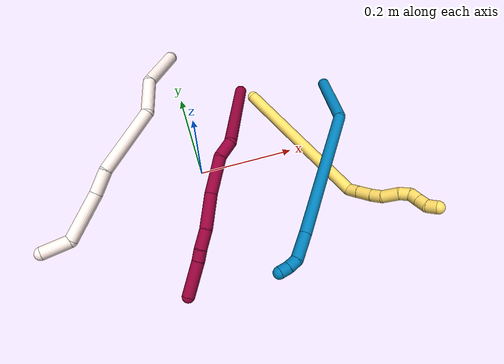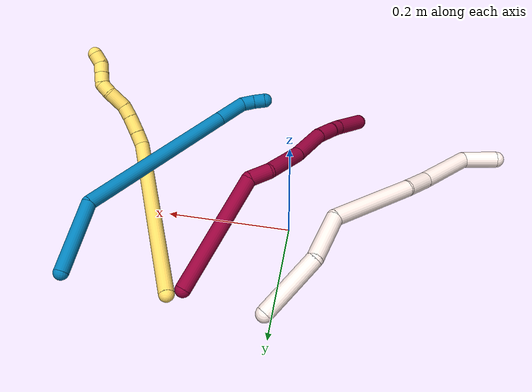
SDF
<sdf version="1.7">
 <world name="default">
  <model name="photoneo_s_sensor">
   <static>1</static>
   <pose>0 0 2 1.57079 1.57079 3.14159</pose>
   <link name="link">
    <inertial><mass>0.1</mass></inertial>
    <sensor name="sensor" type="depth">
     <update_rate>30</update_rate>
     <camera>
      <horizontal_fov>1.22</horizontal_fov>
      <image><width>1920</width><height>1200</height><format>B8G8R8</format></image>
      <clip><near>0.1</near><far>4</far></clip>
      <depth_camera><output>points</output></depth_camera>
     </camera>
     <plugin name="camera_plugin" filename="libgazebo_ros_depth_camera.so">
      <baseline>0.2</baseline>
      <alwaysOn>1</alwaysOn>
      <updateRate>0.0</updateRate>
      <cameraName>camera_ir</cameraName>
      <imageTopicName>/camera/color/image_raw</imageTopicName>
      <cameraInfoTopicName>/camera/color/camera_info</cameraInfoTopicName>
      <depthImageTopicName>/camera/depth/image_raw</depthImageTopicName>
      <depthImageCameraInfoTopicName>/camera/depth/camera_info</depthImageCameraInfoTopicName>
      <pointCloudTopicName>/camera/depth/points</pointCloudTopicName>
      <frameName>fr_optical</frameName>
      <pointCloudCutoff>0.1</pointCloudCutoff>
      <pointCloudCutoffMax>2.0</pointCloudCutoffMax>
      <distortionK1>0</distortionK1>
      <distortionK2>0</distortionK2>
      <distortionK3>0</distortionK3>
      <distortionT1>0</distortionT1>
      <distortionT2>0</distortionT2>
      <CxPrime>0</CxPrime>
      <Cx>0</Cx>
      <Cy>0</Cy>
      <focalLength>0</focalLength>
      <hackBaseline>0</hackBaseline>
     </plugin>
    </sensor>
   </link>
  </model>
  <model name="bin">
   <static>1</static>
   <link name="bottom">
    <collision name="collision-bottom">
     <pose>0 0 -0.01 0 -0 0</pose>
     <geometry><box><size>0.8 0.6 0.02</size></box></geometry>
     <surface>
      <friction><ode><mu>100</mu><mu2>100</mu2></ode></friction>
      <contact><collide_bitmask>65535</collide_bitmask></contact>
     </surface>
    </collision>
   </link>
   <link name="west_wall">
    <collision name="collision-west_wall">
     <pose>-0.41 0 0.1 0 -0 0</pose>
     <geometry><box><size>0.02 0.6 0.2</size></box></geometry>
     <surface>
      <friction><ode><mu>100</mu><mu2>100</mu2></ode></friction>
      <contact><collide_bitmask>65535</collide_bitmask></contact>
     </surface>
    </collision>
   </link>
   <link name="east_wall">
    <collision name="collision-east_wall">
     <pose>0.41 0 0.1 0 -0 0</pose>
     <geometry><box><size>0.02 0.6 0.2</size></box></geometry>
     <surface>
      <friction><ode><mu>100</mu><mu2>100</mu2></ode></friction>
      <contact><collide_bitmask>65535</collide_bitmask></contact>
     </surface>
    </collision>
   </link>
   <link name="south_wall">
    <collision name="collision-south_wall">
     <pose>0 -0.31 0.1 0 -0 0</pose>
     <geometry><box><size>0.8 0.02 0.2</size></box></geometry>
     <surface>
      <friction><ode><mu>100</mu><mu2>100</mu2></ode></friction>
      <contact><collide_bitmask>65535</collide_bitmask></contact>
     </surface>
    </collision>
   </link>
   <link name="north_wall">
    <collision name="collision-north_wall">
     <pose>0 0.31 0.1 0 -0 0</pose>
     <geometry><box><size>0.8 0.02 0.2</size></box></geometry>
     <surface>
      <friction><ode><mu>100</mu><mu2>100</mu2></ode></friction>
      <contact><collide_bitmask>65535</collide_bitmask></contact>
     </surface>
    </collision>
   </link>
  </model>
  <model name="5">
   <static>0</static>
   <link name="5">
    <collision name="collision-cylinder-e_1_1_4">
     <pose>0.011786 -0.065314 0.139741 0.437221 0.07626 0.01695</pose>
     <geometry><cylinder><radius>0.0125</radius><length>0.309401</length></cylinder></geometry>
     <surface>
      <friction><ode><mu>1.16</mu><mu2>1.16</mu2><slip1>0</slip1><slip2>0</slip2></ode></friction>
      <contact><ode><kp>1e+06</kp><kd>1</kd><max_vel>0</max_vel><min_depth>0.001</min_depth></ode></contact>
     </surface>
    </collision>
    <visual name="visual-cylinder-e_1_1_4">
     <pose>0.011786 -0.065314 0.139741 0.437221 0.07626 0.01695</pose>
     <geometry><cylinder><radius>0.0125</radius><length>0.309401</length></cylinder></geometry>
     <material><ambient>1 0.858824 0.4 1</ambient></material>
    </visual>
    <collision name="collision-cylinder-e_2_4_5">
     <pose>0.027344 -0.140389 0.285505 1.01797 0.317723 0.178331</pose>
     <geometry><cylinder><radius>0.0125</radius><length>0.024149</length></cylinder></geometry>
     <surface>
      <friction><ode><mu>1.16</mu><mu2>1.16</mu2><slip1>0</slip1><slip2>0</slip2></ode></friction>
      <contact><ode><kp>1e+06</kp><kd>1</kd><max_vel>0</max_vel><min_depth>0.001</min_depth></ode></contact>
     </surface>
    </collision>
    <visual name="visual-cylinder-e_2_4_5">
     <pose>0.027344 -0.140389 0.285505 1.01797 0.317723 0.178331</pose>
     <geometry><cylinder><radius>0.0125</radius><length>0.024149</length></cylinder></geometry>
     <material><ambient>1 0.858824 0.4 1</ambient></material>
    </visual>
    <collision name="collision-cylinder-e_3_5_6">
     <pose>0.035257 -0.162633 0.299219 1.0186 0.275269 0.154392</pose>
     <geometry><cylinder><radius>0.0125</radius><length>0.030469</length></cylinder></geometry>
     <surface>
      <friction><ode><mu>1.16</mu><mu2>1.16</mu2><slip1>0</slip1><slip2>0</slip2></ode></friction>
      <contact><ode><kp>1e+06</kp><kd>1</kd><max_vel>0</max_vel><min_depth>0.001</min_depth></ode></contact>
     </surface>
    </collision>
    <visual name="visual-cylinder-e_3_5_6">
     <pose>0.035257 -0.162633 0.299219 1.0186 0.275269 0.154392</pose>
     <geometry><cylinder><radius>0.0125</radius><length>0.030469</length></cylinder></geometry>
     <material><ambient>1 0.858824 0.4 1</ambient></material>
    </visual>
    <collision name="collision-cylinder-e_4_6_7">
     <pose>0.042054 -0.184763 0.311646 1.11442 0.242257 0.151396</pose>
     <geometry><cylinder><radius>0.0125</radius><length>0.022144</length></cylinder></geometry>
     <surface>
      <friction><ode><mu>1.16</mu><mu2>1.16</mu2><slip1>0</slip1><slip2>0</slip2></ode></friction>
      <contact><ode><kp>1e+06</kp><kd>1</kd><max_vel>0</max_vel><min_depth>0.001</min_depth></ode></contact>
     </surface>
    </collision>
    <visual name="visual-cylinder-e_4_6_7">
     <pose>0.042054 -0.184763 0.311646 1.11442 0.242257 0.151396</pose>
     <geometry><cylinder><radius>0.0125</radius><length>0.022144</length></cylinder></geometry>
     <material><ambient>1 0.858824 0.4 1</ambient></material>
    </visual>
    <collision name="collision-cylinder-e_5_7_8">
     <pose>0.04532 -0.210781 0.319142 1.40381 0.036704 0.031036</pose>
     <geometry><cylinder><radius>0.0125</radius><length>0.033223</length></cylinder></geometry>
     <surface>
      <friction><ode><mu>1.16</mu><mu2>1.16</mu2><slip1>0</slip1><slip2>0</slip2></ode></friction>
      <contact><ode><kp>1e+06</kp><kd>1</kd><max_vel>0</max_vel><min_depth>0.001</min_depth></ode></contact>
     </surface>
    </collision>
    <visual name="visual-cylinder-e_5_7_8">
     <pose>0.04532 -0.210781 0.319142 1.40381 0.036704 0.031036</pose>
     <geometry><cylinder><radius>0.0125</radius><length>0.033223</length></cylinder></geometry>
     <material><ambient>1 0.858824 0.4 1</ambient></material>
    </visual>
    <collision name="collision-cylinder-e_6_8_9">
     <pose>0.045939 -0.236496 0.326242 1.13596 0.000941 0.0006</pose>
     <geometry><cylinder><radius>0.0125</radius><length>0.020608</length></cylinder></geometry>
     <surface>
      <friction><ode><mu>1.16</mu><mu2>1.16</mu2><slip1>0</slip1><slip2>0</slip2></ode></friction>
      <contact><ode><kp>1e+06</kp><kd>1</kd><max_vel>0</max_vel><min_depth>0.001</min_depth></ode></contact>
     </surface>
    </collision>
    <visual name="visual-cylinder-e_6_8_9">
     <pose>0.045939 -0.236496 0.326242 1.13596 0.000941 0.0006</pose>
     <geometry><cylinder><radius>0.0125</radius><length>0.020608</length></cylinder></geometry>
     <material><ambient>1 0.858824 0.4 1</ambient></material>
    </visual>
    <collision name="collision-cylinder-e_7_9_10">
     <pose>0.049806 -0.251242 0.338066 0.625177 0.395862 0.129452</pose>
     <geometry><cylinder><radius>0.0125</radius><length>0.020005</length></cylinder></geometry>
     <surface>
      <friction><ode><mu>1.16</mu><mu2>1.16</mu2><slip1>0</slip1><slip2>0</slip2></ode></friction>
      <contact><ode><kp>1e+06</kp><kd>1</kd><max_vel>0</max_vel><min_depth>0.001</min_depth></ode></contact>
     </surface>
    </collision>
    <visual name="visual-cylinder-e_7_9_10">
     <pose>0.049806 -0.251242 0.338066 0.625177 0.395862 0.129452</pose>
     <geometry><cylinder><radius>0.0125</radius><length>0.020005</length></cylinder></geometry>
     <material><ambient>1 0.858824 0.4 1</ambient></material>
    </visual>
    <collision name="collision-cylinder-e_8_10_11">
     <pose>0.058022 -0.26228 0.352565 0.67683 0.450991 0.161125</pose>
     <geometry><cylinder><radius>0.0125</radius><length>0.02</length></cylinder></geometry>
     <surface>
      <friction><ode><mu>1.16</mu><mu2>1.16</mu2><slip1>0</slip1><slip2>0</slip2></ode></friction>
      <contact><ode><kp>1e+06</kp><kd>1</kd><max_vel>0</max_vel><min_depth>0.001</min_depth></ode></contact>
     </surface>
    </collision>
    <visual name="visual-cylinder-e_8_10_11">
     <pose>0.058022 -0.26228 0.352565 0.67683 0.450991 0.161125</pose>
     <geometry><cylinder><radius>0.0125</radius><length>0.02</length></cylinder></geometry>
     <material><ambient>1 0.858824 0.4 1</ambient></material>
    </visual>
    <collision name="collision-cylinder-e_9_11_2">
     <pose>0.064354 -0.27672 0.363897 1.11503 0.198695 0.124134</pose>
     <geometry><cylinder><radius>0.0125</radius><length>0.02</length></cylinder></geometry>
     <surface>
      <friction><ode><mu>1.16</mu><mu2>1.16</mu2><slip1>0</slip1><slip2>0</slip2></ode></friction>
      <contact><ode><kp>1e+06</kp><kd>1</kd><max_vel>0</max_vel><min_depth>0.001</min_depth></ode></contact>
     </surface>
    </collision>
    <visual name="visual-cylinder-e_9_11_2">
     <pose>0.064354 -0.27672 0.363897 1.11503 0.198695 0.124134</pose>
     <geometry><cylinder><radius>0.0125</radius><length>0.02</length></cylinder></geometry>
     <material><ambient>1 0.858824 0.4 1</ambient></material>
    </visual>
    <collision name="collision-sphere-2">
     <pose>0.066328 -0.285523 0.368211 0 -0 0</pose>
     <geometry><sphere><radius>0.0125</radius></sphere></geometry>
     <surface>
      <friction><ode><mu>1.16</mu><mu2>1.16</mu2><slip1>0</slip1><slip2>0</slip2></ode></friction>
      <contact><ode><kp>1e+06</kp><kd>1</kd><max_vel>0</max_vel><min_depth>0.001</min_depth></ode></contact>
     </surface>
    </collision>
    <visual name="visual-sphere-2">
     <pose>0.066328 -0.285523 0.368211 0 -0 0</pose>
     <geometry><sphere><radius>0.0125</radius></sphere></geometry>
     <material><ambient>1 0.858824 0.4 1</ambient></material>
    </visual>
    <collision name="collision-sphere-11">
     <pose>0.06238 -0.267917 0.359582 0 -0 0</pose>
     <geometry><sphere><radius>0.0125</radius></sphere></geometry>
     <surface>
      <friction><ode><mu>1.16</mu><mu2>1.16</mu2><slip1>0</slip1><slip2>0</slip2></ode></friction>
      <contact><ode><kp>1e+06</kp><kd>1</kd><max_vel>0</max_vel><min_depth>0.001</min_depth></ode></contact>
     </surface>
    </collision>
    <visual name="visual-sphere-11">
     <pose>0.06238 -0.267917 0.359582 0 -0 0</pose>
     <geometry><sphere><radius>0.0125</radius></sphere></geometry>
     <material><ambient>1 0.858824 0.4 1</ambient></material>
    </visual>
    <collision name="collision-sphere-10">
     <pose>0.053663 -0.256643 0.345549 0 -0 0</pose>
     <geometry><sphere><radius>0.0125</radius></sphere></geometry>
     <surface>
      <friction><ode><mu>1.16</mu><mu2>1.16</mu2><slip1>0</slip1><slip2>0</slip2></ode></friction>
      <contact><ode><kp>1e+06</kp><kd>1</kd><max_vel>0</max_vel><min_depth>0.001</min_depth></ode></contact>
     </surface>
    </collision>
    <visual name="visual-sphere-10">
     <pose>0.053663 -0.256643 0.345549 0 -0 0</pose>
     <geometry><sphere><radius>0.0125</radius></sphere></geometry>
     <material><ambient>1 0.858824 0.4 1</ambient></material>
    </visual>
    <collision name="collision-sphere-9">
     <pose>0.045949 -0.245841 0.330582 0 -0 0</pose>
     <geometry><sphere><radius>0.0125</radius></sphere></geometry>
     <surface>
      <friction><ode><mu>1.16</mu><mu2>1.16</mu2><slip1>0</slip1><slip2>0</slip2></ode></friction>
      <contact><ode><kp>1e+06</kp><kd>1</kd><max_vel>0</max_vel><min_depth>0.001</min_depth></ode></contact>
     </surface>
    </collision>
    <visual name="visual-sphere-9">
     <pose>0.045949 -0.245841 0.330582 0 -0 0</pose>
     <geometry><sphere><radius>0.0125</radius></sphere></geometry>
     <material><ambient>1 0.858824 0.4 1</ambient></material>
    </visual>
    <collision name="collision-sphere-4">
     <pose>0.023572 -0.130627 0.279482 0 -0 0</pose>
     <geometry><sphere><radius>0.0125</radius></sphere></geometry>
     <surface>
      <friction><ode><mu>1.16</mu><mu2>1.16</mu2><slip1>0</slip1><slip2>0</slip2></ode></friction>
      <contact><ode><kp>1e+06</kp><kd>1</kd><max_vel>0</max_vel><min_depth>0.001</min_depth></ode></contact>
     </surface>
    </collision>
    <visual name="visual-sphere-4">
     <pose>0.023572 -0.130627 0.279482 0 -0 0</pose>
     <geometry><sphere><radius>0.0125</radius></sphere></geometry>
     <material><ambient>1 0.858824 0.4 1</ambient></material>
    </visual>
    <collision name="collision-sphere-1">
     <geometry><sphere><radius>0.0125</radius></sphere></geometry>
     <surface>
      <friction><ode><mu>1.16</mu><mu2>1.16</mu2><slip1>0</slip1><slip2>0</slip2></ode></friction>
      <contact><ode><kp>1e+06</kp><kd>1</kd><max_vel>0</max_vel><min_depth>0.001</min_depth></ode></contact>
     </surface>
    </collision>
    <visual name="visual-sphere-1">
     <geometry><sphere><radius>0.0125</radius></sphere></geometry>
     <material><ambient>1 0.858824 0.4 1</ambient></material>
    </visual>
    <collision name="collision-sphere-8">
     <pose>0.04593 -0.227151 0.321901 0 -0 0</pose>
     <geometry><sphere><radius>0.0125</radius></sphere></geometry>
     <surface>
      <friction><ode><mu>1.16</mu><mu2>1.16</mu2><slip1>0</slip1><slip2>0</slip2></ode></friction>
      <contact><ode><kp>1e+06</kp><kd>1</kd><max_vel>0</max_vel><min_depth>0.001</min_depth></ode></contact>
     </surface>
    </collision>
    <visual name="visual-sphere-8">
     <pose>0.04593 -0.227151 0.321901 0 -0 0</pose>
     <geometry><sphere><radius>0.0125</radius></sphere></geometry>
     <material><ambient>1 0.858824 0.4 1</ambient></material>
    </visual>
    <collision name="collision-sphere-5">
     <pose>0.031117 -0.150151 0.291528 0 -0 0</pose>
     <geometry><sphere><radius>0.0125</radius></sphere></geometry>
     <surface>
      <friction><ode><mu>1.16</mu><mu2>1.16</mu2><slip1>0</slip1><slip2>0</slip2></ode></friction>
      <contact><ode><kp>1e+06</kp><kd>1</kd><max_vel>0</max_vel><min_depth>0.001</min_depth></ode></contact>
     </surface>
    </collision>
    <visual name="visual-sphere-5">
     <pose>0.031117 -0.150151 0.291528 0 -0 0</pose>
     <geometry><sphere><radius>0.0125</radius></sphere></geometry>
     <material><ambient>1 0.858824 0.4 1</ambient></material>
    </visual>
    <collision name="collision-sphere-6">
     <pose>0.039398 -0.175115 0.306909 0 -0 0</pose>
     <geometry><sphere><radius>0.0125</radius></sphere></geometry>
     <surface>
      <friction><ode><mu>1.16</mu><mu2>1.16</mu2><slip1>0</slip1><slip2>0</slip2></ode></friction>
      <contact><ode><kp>1e+06</kp><kd>1</kd><max_vel>0</max_vel><min_depth>0.001</min_depth></ode></contact>
     </surface>
    </collision>
    <visual name="visual-sphere-6">
     <pose>0.039398 -0.175115 0.306909 0 -0 0</pose>
     <geometry><sphere><radius>0.0125</radius></sphere></geometry>
     <material><ambient>1 0.858824 0.4 1</ambient></material>
    </visual>
    <collision name="collision-sphere-7">
     <pose>0.04471 -0.194412 0.316383 0 -0 0</pose>
     <geometry><sphere><radius>0.0125</radius></sphere></geometry>
     <surface>
      <friction><ode><mu>1.16</mu><mu2>1.16</mu2><slip1>0</slip1><slip2>0</slip2></ode></friction>
      <contact><ode><kp>1e+06</kp><kd>1</kd><max_vel>0</max_vel><min_depth>0.001</min_depth></ode></contact>
     </surface>
    </collision>
    <visual name="visual-sphere-7">
     <pose>0.04471 -0.194412 0.316383 0 -0 0</pose>
     <geometry><sphere><radius>0.0125</radius></sphere></geometry>
     <material><ambient>1 0.858824 0.4 1</ambient></material>
    </visual>
    <inertial>
     <pose>0.024418 -0.120655 0.209134 0 -0 0</pose>
     <mass>0.5</mass>
     <inertia>
      <ixx>0.002539</ixx>
      <ixy>0</ixy>
      <ixz>0</ixz>
      <iyy>0.002278</iyy>
      <iyz>0</iyz>
      <izz>0.000898</izz>
     </inertia>
    </inertial>
   </link>
   <pose>0.163194 0.155355 0.011499 -2.08676 -0.799883 -2.63464</pose>
  </model>
  <model name="8">
   <static>0</static>
   <link name="8">
    <collision name="collision-cylinder-e_1_1_4">
     <pose>-0.022326 -0.082248 0.046575 1.05554 -0.231955 -0.135614</pose>
     <geometry><cylinder><radius>0.0125</radius><length>0.194242</length></cylinder></geometry>
     <surface>
      <friction><ode><mu>1.16</mu><mu2>1.16</mu2><slip1>0</slip1><slip2>0</slip2></ode></friction>
      <contact><ode><kp>1e+06</kp><kd>1</kd><max_vel>0</max_vel><min_depth>0.001</min_depth></ode></contact>
     </surface>
    </collision>
    <visual name="visual-cylinder-e_1_1_4">
     <pose>-0.022326 -0.082248 0.046575 1.05554 -0.231955 -0.135614</pose>
     <geometry><cylinder><radius>0.0125</radius><length>0.194242</length></cylinder></geometry>
     <material><ambient>0.584314 0 0.227451 1</ambient></material>
    </visual>
    <collision name="collision-cylinder-e_2_4_5">
     <pose>-0.054615 -0.179463 0.091862 1.65666 -0.585594 -0.634834</pose>
     <geometry><cylinder><radius>0.0125</radius><length>0.036051</length></cylinder></geometry>
     <surface>
      <friction><ode><mu>1.16</mu><mu2>1.16</mu2><slip1>0</slip1><slip2>0</slip2></ode></friction>
      <contact><ode><kp>1e+06</kp><kd>1</kd><max_vel>0</max_vel><min_depth>0.001</min_depth></ode></contact>
     </surface>
    </collision>
    <visual name="visual-cylinder-e_2_4_5">
     <pose>-0.054615 -0.179463 0.091862 1.65666 -0.585594 -0.634834</pose>
     <geometry><cylinder><radius>0.0125</radius><length>0.036051</length></cylinder></geometry>
     <material><ambient>0.584314 0 0.227451 1</ambient></material>
    </visual>
    <collision name="collision-cylinder-e_3_5_6">
     <pose>-0.072145 -0.229752 0.083221 1.77602 -0.206741 -0.253746</pose>
     <geometry><cylinder><radius>0.0125</radius><length>0.073729</length></cylinder></geometry>
     <surface>
      <friction><ode><mu>1.16</mu><mu2>1.16</mu2><slip1>0</slip1><slip2>0</slip2></ode></friction>
      <contact><ode><kp>1e+06</kp><kd>1</kd><max_vel>0</max_vel><min_depth>0.001</min_depth></ode></contact>
     </surface>
    </collision>
    <visual name="visual-cylinder-e_3_5_6">
     <pose>-0.072145 -0.229752 0.083221 1.77602 -0.206741 -0.253746</pose>
     <geometry><cylinder><radius>0.0125</radius><length>0.073729</length></cylinder></geometry>
     <material><ambient>0.584314 0 0.227451 1</ambient></material>
    </visual>
    <collision name="collision-cylinder-e_4_6_7">
     <pose>-0.083882 -0.298429 0.072572 1.66932 -0.123772 -0.136571</pose>
     <geometry><cylinder><radius>0.0125</radius><length>0.067552</length></cylinder></geometry>
     <surface>
      <friction><ode><mu>1.16</mu><mu2>1.16</mu2><slip1>0</slip1><slip2>0</slip2></ode></friction>
      <contact><ode><kp>1e+06</kp><kd>1</kd><max_vel>0</max_vel><min_depth>0.001</min_depth></ode></contact>
     </surface>
    </collision>
    <visual name="visual-cylinder-e_4_6_7">
     <pose>-0.083882 -0.298429 0.072572 1.66932 -0.123772 -0.136571</pose>
     <geometry><cylinder><radius>0.0125</radius><length>0.067552</length></cylinder></geometry>
     <material><ambient>0.584314 0 0.227451 1</ambient></material>
    </visual>
    <collision name="collision-cylinder-e_5_7_8">
     <pose>-0.09233 -0.349701 0.064351 1.83903 -0.226308 -0.295995</pose>
     <geometry><cylinder><radius>0.0125</radius><length>0.038134</length></cylinder></geometry>
     <surface>
      <friction><ode><mu>1.16</mu><mu2>1.16</mu2><slip1>0</slip1><slip2>0</slip2></ode></friction>
      <contact><ode><kp>1e+06</kp><kd>1</kd><max_vel>0</max_vel><min_depth>0.001</min_depth></ode></contact>
     </surface>
    </collision>
    <visual name="visual-cylinder-e_5_7_8">
     <pose>-0.09233 -0.349701 0.064351 1.83903 -0.226308 -0.295995</pose>
     <geometry><cylinder><radius>0.0125</radius><length>0.038134</length></cylinder></geometry>
     <material><ambient>0.584314 0 0.227451 1</ambient></material>
    </visual>
    <collision name="collision-cylinder-e_6_8_9">
     <pose>-0.098024 -0.37756 0.055657 1.93316 -0.132392 -0.191471</pose>
     <geometry><cylinder><radius>0.0125</radius><length>0.021454</length></cylinder></geometry>
     <surface>
      <friction><ode><mu>1.16</mu><mu2>1.16</mu2><slip1>0</slip1><slip2>0</slip2></ode></friction>
      <contact><ode><kp>1e+06</kp><kd>1</kd><max_vel>0</max_vel><min_depth>0.001</min_depth></ode></contact>
     </surface>
    </collision>
    <visual name="visual-cylinder-e_6_8_9">
     <pose>-0.098024 -0.37756 0.055657 1.93316 -0.132392 -0.191471</pose>
     <geometry><cylinder><radius>0.0125</radius><length>0.021454</length></cylinder></geometry>
     <material><ambient>0.584314 0 0.227451 1</ambient></material>
    </visual>
    <collision name="collision-cylinder-e_7_9_2">
     <pose>-0.106629 -0.418567 0.038926 1.96609 -0.210409 -0.314343</pose>
     <geometry><cylinder><radius>0.0125</radius><length>0.068838</length></cylinder></geometry>
     <surface>
      <friction><ode><mu>1.16</mu><mu2>1.16</mu2><slip1>0</slip1><slip2>0</slip2></ode></friction>
      <contact><ode><kp>1e+06</kp><kd>1</kd><max_vel>0</max_vel><min_depth>0.001</min_depth></ode></contact>
     </surface>
    </collision>
    <visual name="visual-cylinder-e_7_9_2">
     <pose>-0.106629 -0.418567 0.038926 1.96609 -0.210409 -0.314343</pose>
     <geometry><cylinder><radius>0.0125</radius><length>0.068838</length></cylinder></geometry>
     <material><ambient>0.584314 0 0.227451 1</ambient></material>
    </visual>
    <collision name="collision-sphere-2">
     <pose>-0.113818 -0.449631 0.025964 0 -0 0</pose>
     <geometry><sphere><radius>0.0125</radius></sphere></geometry>
     <surface>
      <friction><ode><mu>1.16</mu><mu2>1.16</mu2><slip1>0</slip1><slip2>0</slip2></ode></friction>
      <contact><ode><kp>1e+06</kp><kd>1</kd><max_vel>0</max_vel><min_depth>0.001</min_depth></ode></contact>
     </surface>
    </collision>
    <visual name="visual-sphere-2">
     <pose>-0.113818 -0.449631 0.025964 0 -0 0</pose>
     <geometry><sphere><radius>0.0125</radius></sphere></geometry>
     <material><ambient>0.584314 0 0.227451 1</ambient></material>
    </visual>
    <collision name="collision-sphere-9">
     <pose>-0.09944 -0.387503 0.051887 0 -0 0</pose>
     <geometry><sphere><radius>0.0125</radius></sphere></geometry>
     <surface>
      <friction><ode><mu>1.16</mu><mu2>1.16</mu2><slip1>0</slip1><slip2>0</slip2></ode></friction>
      <contact><ode><kp>1e+06</kp><kd>1</kd><max_vel>0</max_vel><min_depth>0.001</min_depth></ode></contact>
     </surface>
    </collision>
    <visual name="visual-sphere-9">
     <pose>-0.09944 -0.387503 0.051887 0 -0 0</pose>
     <geometry><sphere><radius>0.0125</radius></sphere></geometry>
     <material><ambient>0.584314 0 0.227451 1</ambient></material>
    </visual>
    <collision name="collision-sphere-4">
     <pose>-0.044652 -0.164496 0.093151 0 -0 0</pose>
     <geometry><sphere><radius>0.0125</radius></sphere></geometry>
     <surface>
      <friction><ode><mu>1.16</mu><mu2>1.16</mu2><slip1>0</slip1><slip2>0</slip2></ode></friction>
      <contact><ode><kp>1e+06</kp><kd>1</kd><max_vel>0</max_vel><min_depth>0.001</min_depth></ode></contact>
     </surface>
    </collision>
    <visual name="visual-sphere-4">
     <pose>-0.044652 -0.164496 0.093151 0 -0 0</pose>
     <geometry><sphere><radius>0.0125</radius></sphere></geometry>
     <material><ambient>0.584314 0 0.227451 1</ambient></material>
    </visual>
    <collision name="collision-sphere-1">
     <geometry><sphere><radius>0.0125</radius></sphere></geometry>
     <surface>
      <friction><ode><mu>1.16</mu><mu2>1.16</mu2><slip1>0</slip1><slip2>0</slip2></ode></friction>
      <contact><ode><kp>1e+06</kp><kd>1</kd><max_vel>0</max_vel><min_depth>0.001</min_depth></ode></contact>
     </surface>
    </collision>
    <visual name="visual-sphere-1">
     <geometry><sphere><radius>0.0125</radius></sphere></geometry>
     <material><ambient>0.584314 0 0.227451 1</ambient></material>
    </visual>
    <collision name="collision-sphere-8">
     <pose>-0.096608 -0.367617 0.059426 0 -0 0</pose>
     <geometry><sphere><radius>0.0125</radius></sphere></geometry>
     <surface>
      <friction><ode><mu>1.16</mu><mu2>1.16</mu2><slip1>0</slip1><slip2>0</slip2></ode></friction>
      <contact><ode><kp>1e+06</kp><kd>1</kd><max_vel>0</max_vel><min_depth>0.001</min_depth></ode></contact>
     </surface>
    </collision>
    <visual name="visual-sphere-8">
     <pose>-0.096608 -0.367617 0.059426 0 -0 0</pose>
     <geometry><sphere><radius>0.0125</radius></sphere></geometry>
     <material><ambient>0.584314 0 0.227451 1</ambient></material>
    </visual>
    <collision name="collision-sphere-5">
     <pose>-0.064577 -0.194429 0.090574 0 -0 0</pose>
     <geometry><sphere><radius>0.0125</radius></sphere></geometry>
     <surface>
      <friction><ode><mu>1.16</mu><mu2>1.16</mu2><slip1>0</slip1><slip2>0</slip2></ode></friction>
      <contact><ode><kp>1e+06</kp><kd>1</kd><max_vel>0</max_vel><min_depth>0.001</min_depth></ode></contact>
     </surface>
    </collision>
    <visual name="visual-sphere-5">
     <pose>-0.064577 -0.194429 0.090574 0 -0 0</pose>
     <geometry><sphere><radius>0.0125</radius></sphere></geometry>
     <material><ambient>0.584314 0 0.227451 1</ambient></material>
    </visual>
    <collision name="collision-sphere-6">
     <pose>-0.079712 -0.265074 0.075869 0 -0 0</pose>
     <geometry><sphere><radius>0.0125</radius></sphere></geometry>
     <surface>
      <friction><ode><mu>1.16</mu><mu2>1.16</mu2><slip1>0</slip1><slip2>0</slip2></ode></friction>
      <contact><ode><kp>1e+06</kp><kd>1</kd><max_vel>0</max_vel><min_depth>0.001</min_depth></ode></contact>
     </surface>
    </collision>
    <visual name="visual-sphere-6">
     <pose>-0.079712 -0.265074 0.075869 0 -0 0</pose>
     <geometry><sphere><radius>0.0125</radius></sphere></geometry>
     <material><ambient>0.584314 0 0.227451 1</ambient></material>
    </visual>
    <collision name="collision-sphere-7">
     <pose>-0.088052 -0.331784 0.069275 0 -0 0</pose>
     <geometry><sphere><radius>0.0125</radius></sphere></geometry>
     <surface>
      <friction><ode><mu>1.16</mu><mu2>1.16</mu2><slip1>0</slip1><slip2>0</slip2></ode></friction>
      <contact><ode><kp>1e+06</kp><kd>1</kd><max_vel>0</max_vel><min_depth>0.001</min_depth></ode></contact>
     </surface>
    </collision>
    <visual name="visual-sphere-7">
     <pose>-0.088052 -0.331784 0.069275 0 -0 0</pose>
     <geometry><sphere><radius>0.0125</radius></sphere></geometry>
     <material><ambient>0.584314 0 0.227451 1</ambient></material>
    </visual>
    <inertial>
     <pose>-0.06051 -0.219588 0.059449 0 -0 0</pose>
     <mass>0.5</mass>
     <inertia>
      <ixx>0.00058</ixx>
      <ixy>0</ixy>
      <ixz>0</ixz>
      <iyy>0.000159</iyy>
      <iyz>0</iyz>
      <izz>0.000791</izz>
     </inertia>
    </inertial>
   </link>
   <pose>0.133683 0.158718 0.0393 0.177343 0.218584 -0.229733</pose>
  </model>
  <model name="9">
   <static>0</static>
   <link name="9">
    <collision name="collision-cylinder-e_1_1_4">
     <pose>-0.011326 -0.056646 0.017819 1.26603 -0.188467 -0.138475</pose>
     <geometry><cylinder><radius>0.0125</radius><length>0.120906</length></cylinder></geometry>
     <surface>
      <friction><ode><mu>1.16</mu><mu2>1.16</mu2><slip1>0</slip1><slip2>0</slip2></ode></friction>
      <contact><ode><kp>1e+06</kp><kd>1</kd><max_vel>0</max_vel><min_depth>0.001</min_depth></ode></contact>
     </surface>
    </collision>
    <visual name="visual-cylinder-e_1_1_4">
     <pose>-0.011326 -0.056646 0.017819 1.26603 -0.188467 -0.138475</pose>
     <geometry><cylinder><radius>0.0125</radius><length>0.120906</length></cylinder></geometry>
     <material><ambient>0 0.490196 0.709804 1</ambient></material>
    </visual>
    <collision name="collision-cylinder-e_2_4_5">
     <pose>-0.033147 -0.201912 0.144824 0.681802 -0.074491 -0.026436</pose>
     <geometry><cylinder><radius>0.0125</radius><length>0.28203</length></cylinder></geometry>
     <surface>
      <friction><ode><mu>1.16</mu><mu2>1.16</mu2><slip1>0</slip1><slip2>0</slip2></ode></friction>
      <contact><ode><kp>1e+06</kp><kd>1</kd><max_vel>0</max_vel><min_depth>0.001</min_depth></ode></contact>
     </surface>
    </collision>
    <visual name="visual-cylinder-e_2_4_5">
     <pose>-0.033147 -0.201912 0.144824 0.681802 -0.074491 -0.026436</pose>
     <geometry><cylinder><radius>0.0125</radius><length>0.28203</length></cylinder></geometry>
     <material><ambient>0 0.490196 0.709804 1</ambient></material>
    </visual>
    <collision name="collision-cylinder-e_3_5_6">
     <pose>-0.044353 -0.307871 0.275105 0.687956 -0.026067 -0.009338</pose>
     <geometry><cylinder><radius>0.0125</radius><length>0.054631</length></cylinder></geometry>
     <surface>
      <friction><ode><mu>1.16</mu><mu2>1.16</mu2><slip1>0</slip1><slip2>0</slip2></ode></friction>
      <contact><ode><kp>1e+06</kp><kd>1</kd><max_vel>0</max_vel><min_depth>0.001</min_depth></ode></contact>
     </surface>
    </collision>
    <visual name="visual-cylinder-e_3_5_6">
     <pose>-0.044353 -0.307871 0.275105 0.687956 -0.026067 -0.009338</pose>
     <geometry><cylinder><radius>0.0125</radius><length>0.054631</length></cylinder></geometry>
     <material><ambient>0 0.490196 0.709804 1</ambient></material>
    </visual>
    <collision name="collision-cylinder-e_4_6_7">
     <pose>-0.041395 -0.328802 0.306012 0.351011 0.337781 0.060456</pose>
     <geometry><cylinder><radius>0.0125</radius><length>0.022149</length></cylinder></geometry>
     <surface>
      <friction><ode><mu>1.16</mu><mu2>1.16</mu2><slip1>0</slip1><slip2>0</slip2></ode></friction>
      <contact><ode><kp>1e+06</kp><kd>1</kd><max_vel>0</max_vel><min_depth>0.001</min_depth></ode></contact>
     </surface>
    </collision>
    <visual name="visual-cylinder-e_4_6_7">
     <pose>-0.041395 -0.328802 0.306012 0.351011 0.337781 0.060456</pose>
     <geometry><cylinder><radius>0.0125</radius><length>0.022149</length></cylinder></geometry>
     <material><ambient>0 0.490196 0.709804 1</ambient></material>
    </visual>
    <collision name="collision-cylinder-e_5_7_2">
     <pose>-0.032768 -0.334549 0.324405 0.245962 0.510717 0.064514</pose>
     <geometry><cylinder><radius>0.0125</radius><length>0.020284</length></cylinder></geometry>
     <surface>
      <friction><ode><mu>1.16</mu><mu2>1.16</mu2><slip1>0</slip1><slip2>0</slip2></ode></friction>
      <contact><ode><kp>1e+06</kp><kd>1</kd><max_vel>0</max_vel><min_depth>0.001</min_depth></ode></contact>
     </surface>
    </collision>
    <visual name="visual-cylinder-e_5_7_2">
     <pose>-0.032768 -0.334549 0.324405 0.245962 0.510717 0.064514</pose>
     <geometry><cylinder><radius>0.0125</radius><length>0.020284</length></cylinder></geometry>
     <material><ambient>0 0.490196 0.709804 1</ambient></material>
    </visual>
    <collision name="collision-sphere-2">
     <pose>-0.02781 -0.336703 0.332987 0 -0 0</pose>
     <geometry><sphere><radius>0.0125</radius></sphere></geometry>
     <surface>
      <friction><ode><mu>1.16</mu><mu2>1.16</mu2><slip1>0</slip1><slip2>0</slip2></ode></friction>
      <contact><ode><kp>1e+06</kp><kd>1</kd><max_vel>0</max_vel><min_depth>0.001</min_depth></ode></contact>
     </surface>
    </collision>
    <visual name="visual-sphere-2">
     <pose>-0.02781 -0.336703 0.332987 0 -0 0</pose>
     <geometry><sphere><radius>0.0125</radius></sphere></geometry>
     <material><ambient>0 0.490196 0.709804 1</ambient></material>
    </visual>
    <collision name="collision-sphere-7">
     <pose>-0.037725 -0.332395 0.315824 0 -0 0</pose>
     <geometry><sphere><radius>0.0125</radius></sphere></geometry>
     <surface>
      <friction><ode><mu>1.16</mu><mu2>1.16</mu2><slip1>0</slip1><slip2>0</slip2></ode></friction>
      <contact><ode><kp>1e+06</kp><kd>1</kd><max_vel>0</max_vel><min_depth>0.001</min_depth></ode></contact>
     </surface>
    </collision>
    <visual name="visual-sphere-7">
     <pose>-0.037725 -0.332395 0.315824 0 -0 0</pose>
     <geometry><sphere><radius>0.0125</radius></sphere></geometry>
     <material><ambient>0 0.490196 0.709804 1</ambient></material>
    </visual>
    <collision name="collision-sphere-6">
     <pose>-0.045065 -0.325209 0.296201 0 -0 0</pose>
     <geometry><sphere><radius>0.0125</radius></sphere></geometry>
     <surface>
      <friction><ode><mu>1.16</mu><mu2>1.16</mu2><slip1>0</slip1><slip2>0</slip2></ode></friction>
      <contact><ode><kp>1e+06</kp><kd>1</kd><max_vel>0</max_vel><min_depth>0.001</min_depth></ode></contact>
     </surface>
    </collision>
    <visual name="visual-sphere-6">
     <pose>-0.045065 -0.325209 0.296201 0 -0 0</pose>
     <geometry><sphere><radius>0.0125</radius></sphere></geometry>
     <material><ambient>0 0.490196 0.709804 1</ambient></material>
    </visual>
    <collision name="collision-sphere-5">
     <pose>-0.043641 -0.290532 0.25401 0 -0 0</pose>
     <geometry><sphere><radius>0.0125</radius></sphere></geometry>
     <surface>
      <friction><ode><mu>1.16</mu><mu2>1.16</mu2><slip1>0</slip1><slip2>0</slip2></ode></friction>
      <contact><ode><kp>1e+06</kp><kd>1</kd><max_vel>0</max_vel><min_depth>0.001</min_depth></ode></contact>
     </surface>
    </collision>
    <visual name="visual-sphere-5">
     <pose>-0.043641 -0.290532 0.25401 0 -0 0</pose>
     <geometry><sphere><radius>0.0125</radius></sphere></geometry>
     <material><ambient>0 0.490196 0.709804 1</ambient></material>
    </visual>
    <collision name="collision-sphere-1">
     <geometry><sphere><radius>0.0125</radius></sphere></geometry>
     <surface>
      <friction><ode><mu>1.16</mu><mu2>1.16</mu2><slip1>0</slip1><slip2>0</slip2></ode></friction>
      <contact><ode><kp>1e+06</kp><kd>1</kd><max_vel>0</max_vel><min_depth>0.001</min_depth></ode></contact>
     </surface>
    </collision>
    <visual name="visual-sphere-1">
     <geometry><sphere><radius>0.0125</radius></sphere></geometry>
     <material><ambient>0 0.490196 0.709804 1</ambient></material>
    </visual>
    <collision name="collision-sphere-4">
     <pose>-0.022652 -0.113292 0.035638 0 -0 0</pose>
     <geometry><sphere><radius>0.0125</radius></sphere></geometry>
     <surface>
      <friction><ode><mu>1.16</mu><mu2>1.16</mu2><slip1>0</slip1><slip2>0</slip2></ode></friction>
      <contact><ode><kp>1e+06</kp><kd>1</kd><max_vel>0</max_vel><min_depth>0.001</min_depth></ode></contact>
     </surface>
    </collision>
    <visual name="visual-sphere-4">
     <pose>-0.022652 -0.113292 0.035638 0 -0 0</pose>
     <geometry><sphere><radius>0.0125</radius></sphere></geometry>
     <material><ambient>0 0.490196 0.709804 1</ambient></material>
    </visual>
    <inertial>
     <pose>-0.029445 -0.189364 0.142773 0 -0 0</pose>
     <mass>0.5</mass>
     <inertia>
      <ixx>0.001969</ixx>
      <ixy>0</ixy>
      <ixz>0</ixz>
      <iyy>0.00143</iyy>
      <iyz>0</iyz>
      <izz>0.001529</izz>
     </inertia>
    </inertial>
   </link>
   <pose>0.334259 0.144657 0.0115 -2.25338 -0.787535 2.47101</pose>
  </model>
  <model name="11">
   <static>0</static>
   <link name="11">
    <collision name="collision-cylinder-e_1_1_4">
     <pose>-0.024833 -0.042166 0.008046 1.38225 -0.524467 -0.43699</pose>
     <geometry><cylinder><radius>0.0125</radius><length>0.099184</length></cylinder></geometry>
     <surface>
      <friction><ode><mu>1.16</mu><mu2>1.16</mu2><slip1>0</slip1><slip2>0</slip2></ode></friction>
      <contact><ode><kp>1e+06</kp><kd>1</kd><max_vel>0</max_vel><min_depth>0.001</min_depth></ode></contact>
     </surface>
    </collision>
    <visual name="visual-cylinder-e_1_1_4">
     <pose>-0.024833 -0.042166 0.008046 1.38225 -0.524467 -0.43699</pose>
     <geometry><cylinder><radius>0.0125</radius><length>0.099184</length></cylinder></geometry>
     <material><ambient>1 0.933333 0.909804 1</ambient></material>
    </visual>
    <collision name="collision-cylinder-e_2_4_5">
     <pose>-0.056653 -0.1203 0.009173 1.76084 -0.188469 -0.227867</pose>
     <geometry><cylinder><radius>0.0125</radius><length>0.074576</length></cylinder></geometry>
     <surface>
      <friction><ode><mu>1.16</mu><mu2>1.16</mu2><slip1>0</slip1><slip2>0</slip2></ode></friction>
      <contact><ode><kp>1e+06</kp><kd>1</kd><max_vel>0</max_vel><min_depth>0.001</min_depth></ode></contact>
     </surface>
    </collision>
    <visual name="visual-cylinder-e_2_4_5">
     <pose>-0.056653 -0.1203 0.009173 1.76084 -0.188469 -0.227867</pose>
     <geometry><cylinder><radius>0.0125</radius><length>0.074576</length></cylinder></geometry>
     <material><ambient>1 0.933333 0.909804 1</ambient></material>
    </visual>
    <collision name="collision-cylinder-e_3_5_6">
     <pose>-0.110785 -0.200254 -0.016419 1.97225 -0.778666 -1.10981</pose>
     <geometry><cylinder><radius>0.0125</radius><length>0.134256</length></cylinder></geometry>
     <surface>
      <friction><ode><mu>1.16</mu><mu2>1.16</mu2><slip1>0</slip1><slip2>0</slip2></ode></friction>
      <contact><ode><kp>1e+06</kp><kd>1</kd><max_vel>0</max_vel><min_depth>0.001</min_depth></ode></contact>
     </surface>
    </collision>
    <visual name="visual-cylinder-e_3_5_6">
     <pose>-0.110785 -0.200254 -0.016419 1.97225 -0.778666 -1.10981</pose>
     <geometry><cylinder><radius>0.0125</radius><length>0.134256</length></cylinder></geometry>
     <material><ambient>1 0.933333 0.909804 1</ambient></material>
    </visual>
    <collision name="collision-cylinder-e_4_6_7">
     <pose>-0.170795 -0.259925 -0.046156 2.1852 -0.590406 -1.06113</pose>
     <geometry><cylinder><radius>0.0125</radius><length>0.046214</length></cylinder></geometry>
     <surface>
      <friction><ode><mu>1.16</mu><mu2>1.16</mu2><slip1>0</slip1><slip2>0</slip2></ode></friction>
      <contact><ode><kp>1e+06</kp><kd>1</kd><max_vel>0</max_vel><min_depth>0.001</min_depth></ode></contact>
     </surface>
    </collision>
    <visual name="visual-cylinder-e_4_6_7">
     <pose>-0.170795 -0.259925 -0.046156 2.1852 -0.590406 -1.06113</pose>
     <geometry><cylinder><radius>0.0125</radius><length>0.046214</length></cylinder></geometry>
     <material><ambient>1 0.933333 0.909804 1</ambient></material>
    </visual>
    <collision name="collision-cylinder-e_5_7_8">
     <pose>-0.211903 -0.309155 -0.072969 2.00968 -0.651257 -0.977054</pose>
     <geometry><cylinder><radius>0.0125</radius><length>0.093189</length></cylinder></geometry>
     <surface>
      <friction><ode><mu>1.16</mu><mu2>1.16</mu2><slip1>0</slip1><slip2>0</slip2></ode></friction>
      <contact><ode><kp>1e+06</kp><kd>1</kd><max_vel>0</max_vel><min_depth>0.001</min_depth></ode></contact>
     </surface>
    </collision>
    <visual name="visual-cylinder-e_5_7_8">
     <pose>-0.211903 -0.309155 -0.072969 2.00968 -0.651257 -0.977054</pose>
     <geometry><cylinder><radius>0.0125</radius><length>0.093189</length></cylinder></geometry>
     <material><ambient>1 0.933333 0.909804 1</ambient></material>
    </visual>
    <collision name="collision-cylinder-e_6_8_2">
     <pose>-0.265768 -0.348594 -0.088459 1.52724 -1.34446 -1.30223</pose>
     <geometry><cylinder><radius>0.0125</radius><length>0.052581</length></cylinder></geometry>
     <surface>
      <friction><ode><mu>1.16</mu><mu2>1.16</mu2><slip1>0</slip1><slip2>0</slip2></ode></friction>
      <contact><ode><kp>1e+06</kp><kd>1</kd><max_vel>0</max_vel><min_depth>0.001</min_depth></ode></contact>
     </surface>
    </collision>
    <visual name="visual-cylinder-e_6_8_2">
     <pose>-0.265768 -0.348594 -0.088459 1.52724 -1.34446 -1.30223</pose>
     <geometry><cylinder><radius>0.0125</radius><length>0.052581</length></cylinder></geometry>
     <material><ambient>1 0.933333 0.909804 1</ambient></material>
    </visual>
    <collision name="collision-sphere-2">
     <pose>-0.291388 -0.354489 -0.088202 0 -0 0</pose>
     <geometry><sphere><radius>0.0125</radius></sphere></geometry>
     <surface>
      <friction><ode><mu>1.16</mu><mu2>1.16</mu2><slip1>0</slip1><slip2>0</slip2></ode></friction>
      <contact><ode><kp>1e+06</kp><kd>1</kd><max_vel>0</max_vel><min_depth>0.001</min_depth></ode></contact>
     </surface>
    </collision>
    <visual name="visual-sphere-2">
     <pose>-0.291388 -0.354489 -0.088202 0 -0 0</pose>
     <geometry><sphere><radius>0.0125</radius></sphere></geometry>
     <material><ambient>1 0.933333 0.909804 1</ambient></material>
    </visual>
    <collision name="collision-sphere-4">
     <pose>-0.049667 -0.084331 0.016092 0 -0 0</pose>
     <geometry><sphere><radius>0.0125</radius></sphere></geometry>
     <surface>
      <friction><ode><mu>1.16</mu><mu2>1.16</mu2><slip1>0</slip1><slip2>0</slip2></ode></friction>
      <contact><ode><kp>1e+06</kp><kd>1</kd><max_vel>0</max_vel><min_depth>0.001</min_depth></ode></contact>
     </surface>
    </collision>
    <visual name="visual-sphere-4">
     <pose>-0.049667 -0.084331 0.016092 0 -0 0</pose>
     <geometry><sphere><radius>0.0125</radius></sphere></geometry>
     <material><ambient>1 0.933333 0.909804 1</ambient></material>
    </visual>
    <collision name="collision-sphere-1">
     <geometry><sphere><radius>0.0125</radius></sphere></geometry>
     <surface>
      <friction><ode><mu>1.16</mu><mu2>1.16</mu2><slip1>0</slip1><slip2>0</slip2></ode></friction>
      <contact><ode><kp>1e+06</kp><kd>1</kd><max_vel>0</max_vel><min_depth>0.001</min_depth></ode></contact>
     </surface>
    </collision>
    <visual name="visual-sphere-1">
     <geometry><sphere><radius>0.0125</radius></sphere></geometry>
     <material><ambient>1 0.933333 0.909804 1</ambient></material>
    </visual>
    <collision name="collision-sphere-8">
     <pose>-0.240148 -0.3427 -0.088716 0 -0 0</pose>
     <geometry><sphere><radius>0.0125</radius></sphere></geometry>
     <surface>
      <friction><ode><mu>1.16</mu><mu2>1.16</mu2><slip1>0</slip1><slip2>0</slip2></ode></friction>
      <contact><ode><kp>1e+06</kp><kd>1</kd><max_vel>0</max_vel><min_depth>0.001</min_depth></ode></contact>
     </surface>
    </collision>
    <visual name="visual-sphere-8">
     <pose>-0.240148 -0.3427 -0.088716 0 -0 0</pose>
     <geometry><sphere><radius>0.0125</radius></sphere></geometry>
     <material><ambient>1 0.933333 0.909804 1</ambient></material>
    </visual>
    <collision name="collision-sphere-5">
     <pose>-0.063639 -0.156268 0.002253 0 -0 0</pose>
     <geometry><sphere><radius>0.0125</radius></sphere></geometry>
     <surface>
      <friction><ode><mu>1.16</mu><mu2>1.16</mu2><slip1>0</slip1><slip2>0</slip2></ode></friction>
      <contact><ode><kp>1e+06</kp><kd>1</kd><max_vel>0</max_vel><min_depth>0.001</min_depth></ode></contact>
     </surface>
    </collision>
    <visual name="visual-sphere-5">
     <pose>-0.063639 -0.156268 0.002253 0 -0 0</pose>
     <geometry><sphere><radius>0.0125</radius></sphere></geometry>
     <material><ambient>1 0.933333 0.909804 1</ambient></material>
    </visual>
    <collision name="collision-sphere-6">
     <pose>-0.157931 -0.24424 -0.035091 0 -0 0</pose>
     <geometry><sphere><radius>0.0125</radius></sphere></geometry>
     <surface>
      <friction><ode><mu>1.16</mu><mu2>1.16</mu2><slip1>0</slip1><slip2>0</slip2></ode></friction>
      <contact><ode><kp>1e+06</kp><kd>1</kd><max_vel>0</max_vel><min_depth>0.001</min_depth></ode></contact>
     </surface>
    </collision>
    <visual name="visual-sphere-6">
     <pose>-0.157931 -0.24424 -0.035091 0 -0 0</pose>
     <geometry><sphere><radius>0.0125</radius></sphere></geometry>
     <material><ambient>1 0.933333 0.909804 1</ambient></material>
    </visual>
    <collision name="collision-sphere-7">
     <pose>-0.183658 -0.275609 -0.057222 0 -0 0</pose>
     <geometry><sphere><radius>0.0125</radius></sphere></geometry>
     <surface>
      <friction><ode><mu>1.16</mu><mu2>1.16</mu2><slip1>0</slip1><slip2>0</slip2></ode></friction>
      <contact><ode><kp>1e+06</kp><kd>1</kd><max_vel>0</max_vel><min_depth>0.001</min_depth></ode></contact>
     </surface>
    </collision>
    <visual name="visual-sphere-7">
     <pose>-0.183658 -0.275609 -0.057222 0 -0 0</pose>
     <geometry><sphere><radius>0.0125</radius></sphere></geometry>
     <material><ambient>1 0.933333 0.909804 1</ambient></material>
    </visual>
    <inertial>
     <pose>-0.126352 -0.198381 -0.028613 0 -0 0</pose>
     <mass>0.5</mass>
     <inertia>
      <ixx>-4.7e-05</ixx>
      <ixy>0</ixy>
      <ixz>0</ixz>
      <iyy>-0.000116</iyy>
      <iyz>0</iyz>
      <izz>0.000556</izz>
     </inertia>
    </inertial>
   </link>
   <pose>-0.002405 0.223968 0.123799 -0.197537 -0.040938 -0.057215</pose>
  </model>
 </world>
</sdf>
